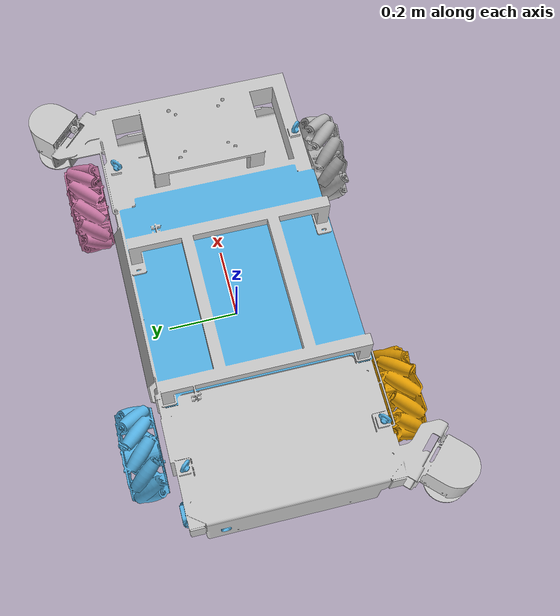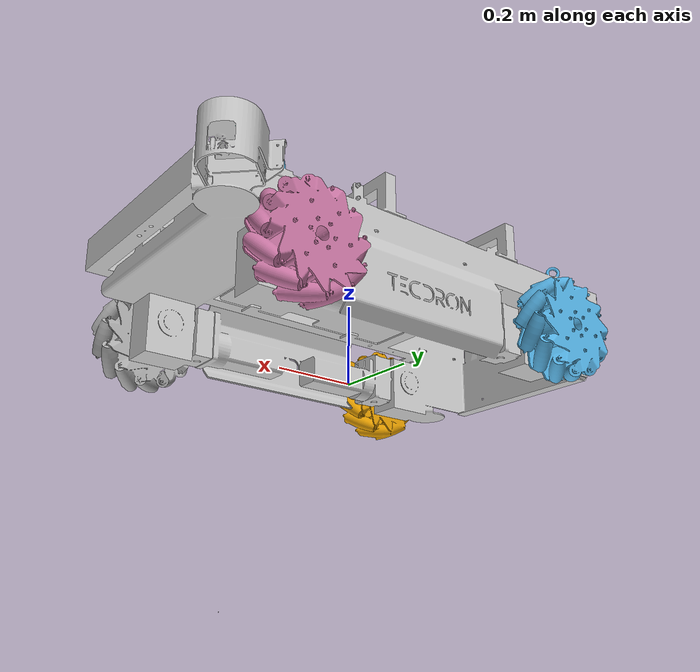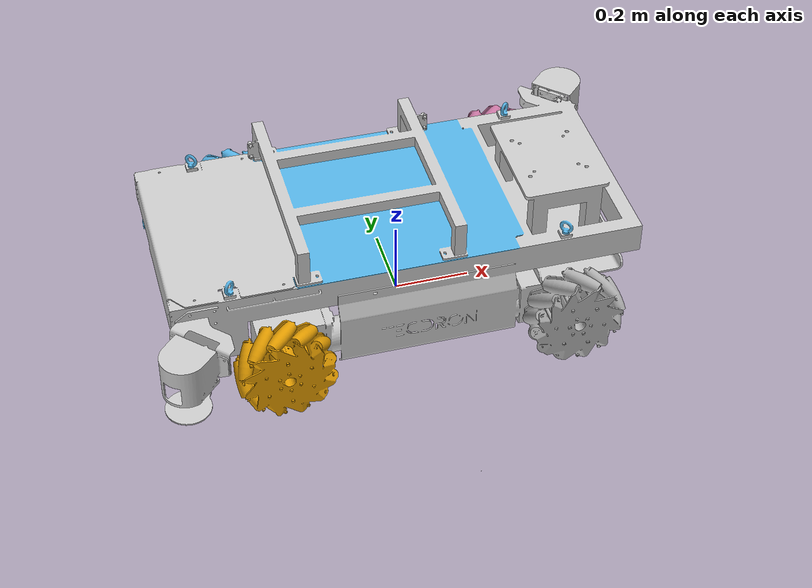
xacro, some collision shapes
<?xml version="1.0"?>

<robot name="tecdron"
	xmlns:xacro="http://www.ros.org/wiki/xacro">

	<xacro:include filename="$(find robot_description)/urdf/wheels/omni_wheel.xacro" />
	<xacro:include filename="$(find robot_description)/urdf/wheels/omni_wheel_visual.xacro" />
	<xacro:include filename="$(find robot_description)/urdf/base/tecdron_base.xacro" />
	<xacro:include filename="$(find robot_description)/urdf/sick/sick_s300.xacro" />
	<xacro:include filename="$(find robot_description)/urdf/sick/sick_s300_gazebo.xacro" />
	<xacro:include filename="$(find robot_description)/urdf/base/tecdron_base_gazebo.xacro" />

	<xacro:property name="wheel_offset_x" value="0.375" />
	<xacro:property name="wheel_offset_y" value="0.35" />
	<xacro:property name="wheel_offset_z" value="0.0" />
	<xacro:property name="PI" value="3.1415926535897931" />

	<xacro:tecdron_base/>

	<xacro:omni_wheel prefix="tecdron_front_left" parent="base_link">
		<origin xyz="${wheel_offset_x} ${wheel_offset_y} ${wheel_offset_z}" rpy="0 0 ${PI/4}"/>
	</xacro:omni_wheel>

	<xacro:omni_wheel prefix="tecdron_front_right" parent="base_link">
		<origin xyz="${wheel_offset_x} -${wheel_offset_y} ${wheel_offset_z}" rpy="0 0 ${-PI/4}"/>
	</xacro:omni_wheel>

	<xacro:omni_wheel prefix="tecdron_back_right" parent="base_link">
		<origin xyz="-${wheel_offset_x} -${wheel_offset_y} ${wheel_offset_z}" rpy="0 0 ${PI/4}"/>
	</xacro:omni_wheel>

	<xacro:omni_wheel prefix="tecdron_back_left" parent="base_link">
		<origin xyz="-${wheel_offset_x} ${wheel_offset_y} ${wheel_offset_z}" rpy="0 0 ${-PI/4}"/>
	</xacro:omni_wheel>

	<!--Visual-->

	<xacro:omni_wheel_visual prefix="tecdron_front_left" parent="base_link">
		<origin xyz="${wheel_offset_x} ${wheel_offset_y} ${wheel_offset_z}" rpy="0 0 0"/>
	</xacro:omni_wheel_visual>

	<xacro:omni_wheel_visual prefix="tecdron_front_right" parent="base_link">
		<origin xyz="${wheel_offset_x} -${wheel_offset_y} ${wheel_offset_z}" rpy="0 0 0"/>
	</xacro:omni_wheel_visual>

	<xacro:omni_wheel_visual prefix="tecdron_back_right" parent="base_link">
		<origin xyz="-${wheel_offset_x} -${wheel_offset_y} ${wheel_offset_z}" rpy="0 0 0"/>
	</xacro:omni_wheel_visual>

	<xacro:omni_wheel_visual prefix="tecdron_back_left" parent="base_link">
		<origin xyz="-${wheel_offset_x} ${wheel_offset_y} ${wheel_offset_z}" rpy="0 0 0"/>
	</xacro:omni_wheel_visual>

	<xacro:omni_steering/>

	<xacro:sensor_sick_s300_gazebo/>

	<xacro:sensor_sick_s300 name="front_sick" parent="base_link" color="white">
		<origin xyz="0.576 0.406 0.145" rpy="${PI} 0 ${PI/4}"/>
	</xacro:sensor_sick_s300>

	<xacro:sensor_sick_s300 name="rear_sick" parent="base_link" color="white">
		<origin xyz="-0.576 -0.406 0.145" rpy="${PI} 0 -${(3*PI)/4}"/>
	</xacro:sensor_sick_s300>
</robot>

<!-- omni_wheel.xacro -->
<robot name="wheel"
  xmlns:xacro="http://www.ros.org/wiki/xacro">

  <!-- Constants -->
  <xacro:property name="PI" value="3.1415926535897931" />
  <xacro:property name="wheel_radius" value="0.127" />
  <xacro:property name="wheel_height" value="0.036" />
  <xacro:property name="wheel_mass" value="10.0" />
  <!-- in kg-->

  <!-- Simple Macro to calculate inertia -->
  <xacro:macro name="cylinder_inertia" params="m r h">
    <inertia ixx="${m*(3*r*r+h*h)/12}" ixy = "0" ixz = "0" iyy="${m*r*r/2}" iyz = "0" izz="${m*(3*r*r+h*h)/12}" />
  </xacro:macro>

  <!-- Set up of the Wheel -->
  <xacro:macro name="omni_wheel" params="prefix parent *origin ">

    <xacro:if value="${prefix == 'tecdron_front_left'}">
      <xacro:property name="fdir" value="1 -1 0" />
    </xacro:if>
    <xacro:if value="${prefix == 'tecdron_front_right'}">
      <xacro:property name="fdir" value="1 1 0" />
    </xacro:if>
    <xacro:if value="${prefix == 'tecdron_back_right'}">
      <xacro:property name="fdir" value="1 -1 0" />
    </xacro:if>
    <xacro:if value="${prefix == 'tecdron_back_left'}">
      <xacro:property name="fdir" value="1 1 0" />
    </xacro:if>

    <link name="${prefix}_wheel_link">
      <collision>
        <origin xyz="0 0 0" rpy="${PI/2} 0 0" />
        <geometry>
          <cylinder radius="${wheel_radius}" length="0.05"/>
        </geometry>
      </collision>
      <inertial>
        <mass value="${wheel_mass}" />
        <origin xyz="0 0 0" />
        <xacro:cylinder_inertia m="${wheel_mass}" r="${wheel_radius}" h="${wheel_height}" />
      </inertial>
      <visual>
        <origin xyz="0 0 0" rpy="${PI/2} 0 0" />
        <geometry>
         <sphere radius="0.001"/>
        </geometry>
      </visual>
    </link>

    <joint name="${prefix}_wheel_joint" type="continuous">
      <parent link="${parent}"/>
      <!--parent link="base_link"/-->
      <child link="${prefix}_wheel_link"/>
      <xacro:insert_block name="origin" />
      <axis xyz="0 1 0"/>
      <limit effort="1000" velocity="21.0" />
      <dynamics damping="0.001" friction="0.001" />
    </joint>

    <transmission name="${prefix}_wheel_joint_trans">
      <type>transmission_interface/SimpleTransmission</type>
      <joint name="${prefix}_wheel_joint">
        <hardwareInterface>hardware_interface/VelocityJointInterface</hardwareInterface>
      </joint>
    </transmission>

  <gazebo reference="${prefix}_wheel_link" xmlns:ignition="http://ignitionrobotics.org/schema">
    <collision>
      <surface>
        <friction>
          <ode>
            <mu>1.0</mu>
            <mu2>0.03</mu2>
            <fdir1 ignition:expressed_in="base_link">${fdir}</fdir1>
          </ode>
        </friction>
      </surface>
    </collision>
  </gazebo>

  </xacro:macro>

</robot>

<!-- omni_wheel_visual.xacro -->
<robot name="wheel"
  xmlns:xacro="http://www.ros.org/wiki/xacro">

  <!-- Constants -->
  <xacro:property name="PI" value="3.1415926535897931" />
  <xacro:property name="wheel_radius" value="0.127" />
  <xacro:property name="wheel_height" value="0.087" />
  <xacro:property name="wheel_mass" value="10" />
  <!-- in kg-->

  <!-- Simple Macro to calculate inertia -->
  <xacro:macro name="cylinder_inertia" params="m r h">
    <inertia ixx="${m*(3*r*r+h*h)/12}" ixy = "0" ixz = "0" iyy="${m*r*r/2}" iyz = "0" izz="${m*(3*r*r+h*h)/12}" />
  </xacro:macro>

  <!-- Set up of the Wheel -->
  <xacro:macro name="omni_wheel_visual" params="prefix parent *origin">

    <link name="${prefix}_wheel_visual_link">
      <collision>
        <origin xyz="0 0 0" rpy="${PI/2} 0 0" />
        <geometry>
          <sphere radius="${0.0005}" />
        </geometry>
      </collision>
      <visual>
        <origin xyz="0 0 0" rpy="0 0 0" />
        <geometry>
          <mesh filename="package://robot_description/meshes/wheels/wheel_${prefix}.dae" />
        </geometry>
      </visual>
       <inertial>
        <mass value="${wheel_mass}" />
        <origin xyz="0 0 0" />
        <xacro:cylinder_inertia m="${wheel_mass}" r="${wheel_radius}" h="${wheel_height}" />
      </inertial>
    </link>

    <joint name="${prefix}_wheel_visual_joint" type="continuous">
      <parent link="${parent}"/>
      <child link="${prefix}_wheel_visual_link"/>
      <xacro:insert_block name="origin" />
      <axis xyz="0 1 0"/>
    </joint>

    <transmission name="${prefix}_wheel_visual_joint_trans">
      <type>transmission_interface/SimpleTransmission</type>
      <joint name="${prefix}_wheel_visual_joint">
        <hardwareInterface>hardware_interface/VelocityJointInterface</hardwareInterface>
      </joint>
    </transmission>

  </xacro:macro>

</robot>

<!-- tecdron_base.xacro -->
<robot name="tecdron"
  xmlns:xacro="http://www.ros.org/wiki/xacro">

  <xacro:macro name="tecdron_base">
    <!--xacro:include filename="$(find robot_description)/urdf/base/tecdron_base.gazebo.xacro" /-->
    <!-- Robot mechanical and motor parameters -->
    <xacro:property name="PI" value="3.1415926535897931"/>
    <xacro:property name="width" value="0.50" />
    <xacro:property name="length" value="0.70" />
    <xacro:property name="height" value="0.20" />
    <xacro:property name="base_mass" value="150.0" />

    <xacro:property name="ixx" value="${(1/12.0) * base_mass * (height * height + length * length)}" />
    <xacro:property name="iyy" value="${(1/12.0) * base_mass * (width * width + length * length)}" />
    <xacro:property name="izz" value="${(1/12.0) * base_mass * (width * width + height * height)}" />

    <!-- BASE FOOTPRINT-->
    <link name="base_footprint">
      <inertial>
        <mass value="1.0" />
        <origin xyz="0 0 0" />
      </inertial>
      <visual>
        <origin xyz="0 0 0" rpy="0 0 0" />
        <geometry>
          <box size="0.001 0.001 0.001" />
        </geometry>
      </visual>

    </link>
    <joint name="base_footprint_joint" type="fixed">
      <origin xyz="0 0 ${wheel_radius}" rpy="0 0 0" />
      <parent link="base_footprint"/>
      <child link="base_link" />
    </joint>

  <!-- BASE_LINK -->
  <link name="base_link">
    <collision>
      <origin xyz="0 0 0" rpy="0 0 0 " />
      <geometry>
        <mesh filename="package://robot_description/meshes/base/tecdron_base.dae"/>
      </geometry>
    </collision>
    <inertial>
      <mass value="${base_mass}" />
      <origin xyz="0 0 0" rpy="0 0 0" />
      <inertia ixx="${ixx}" ixy="0" ixz="0" iyy="${iyy}" iyz="0" izz="${izz}" />
    </inertial>
    <visual>
      <origin xyz="0 0 0" rpy="0 0 0" />
      <geometry>
        <mesh filename="package://robot_description/meshes/base/tecdron_base.dae"/>
      </geometry>
    </visual>
  </link>

  	<!-- Odometry Plugin attached to the robot's base -->
    <gazebo>
        <plugin filename="ignition-gazebo-odometry-publisher-system" name="ignition::gazebo::systems::OdometryPublisher">
            <odom_topic>/tecdron/base_link/odometry</odom_topic>
            <frame_id>odom</frame_id>
            <child_frame_id>base_link</child_frame_id>
            <use_local_frame>true</use_local_frame>
            <dimensions>3</dimensions>
        </plugin>
    </gazebo>

  </xacro:macro>
</robot>

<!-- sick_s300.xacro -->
<robot name="sensor_sick_s300"
     xmlns:xacro="http://ros.org/wiki/xacro">

     <xacro:include filename="$(find robot_description)/urdf/sick/materials.urdf.xacro"/>

     <xacro:macro name="sensor_sick_s300" params="name parent *origin color">

          <joint name="${name}_fix_joint" type="fixed">
               <xacro:insert_block name="origin" />
               <parent link="${parent}"/>
               <child link="${name}_fix_link"/>
          </joint>

          <link name="${name}_fix_link">
               <collision>
                    <origin xyz="0 0 0" rpy="0 0 0"/>
                    <geometry>
                         <box size="0.001 0.001 0.001" />
                    </geometry>
               </collision>

               <visual>
                    <origin xyz="0 0 0" rpy="0 0 0"/>
                    <geometry>
                         <mesh filename="package://robot_description/meshes/sick/sick_s300.dae"/>
                    </geometry>
                    <xacro:color_material color="${color}"/>
               </visual>

               <inertial>
                    <mass value="1e-5" />
                    <origin xyz="0 0 0" rpy="0 0 0"/>
                    <inertia ixx="1e-6" ixy="0" ixz="0" iyy="1e-6" iyz="0" izz="1e-6" />
               </inertial>
          </link>

          <joint name="${name}_joint" type="fixed">
               <parent link="${name}_fix_link"/>
               <child link="${name}_link"/>
               <origin xyz="0 0 0.115" rpy="0 0 0"/>
          </joint>

          <link name="${name}_link" />

    <gazebo reference="${name}_link">
          <sensor type="gpu_lidar" name="${name}_hokuyo_sensor">
              <pose relative_to='${name}_link'>0 0 0 0 0 0</pose>
              <always_on>1</always_on>
              <visualize>true</visualize>
              <update_rate>20</update_rate>
              <topic>/${name}/laser/scan</topic>
              <ray>
                  <scan>
                      <horizontal>
                          <samples>720</samples>
                          <resolution>1</resolution>
                          <min_angle>${-3.1415 * (3 / 4.5)}</min_angle>
                          <max_angle>${3.1415 * (3 / 4.5)}</max_angle>
                      </horizontal>
                  </scan>
                  <range>
                      <min>0.20</min>
                      <max>10.0</max>
                      <resolution>0.01</resolution>
                  </range>
                  <noise>
                      <type>gaussian</type>
                      <mean>0.0</mean>
                      <stddev>0.01</stddev>
                  </noise>
              </ray>
          </sensor>
     </gazebo>

</xacro:macro>

</robot>
